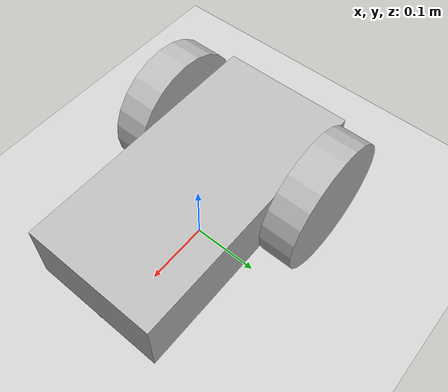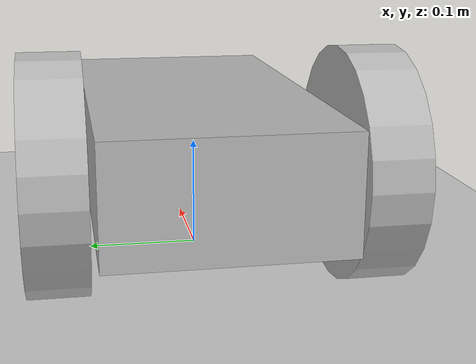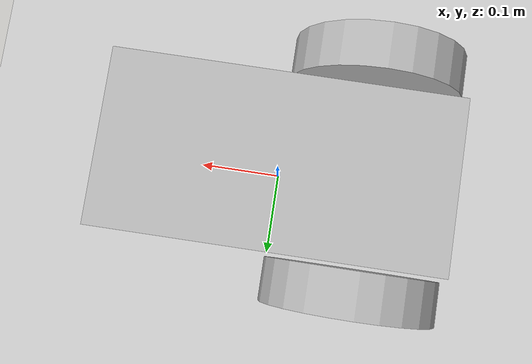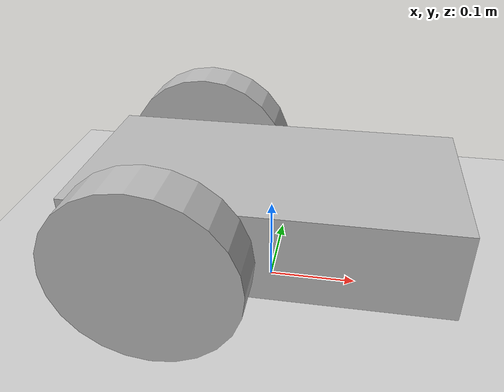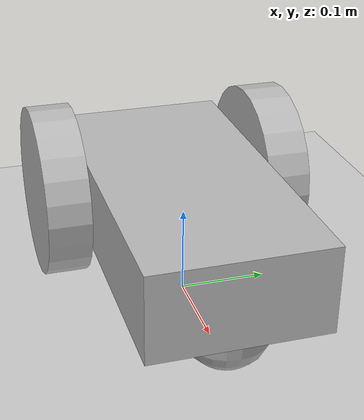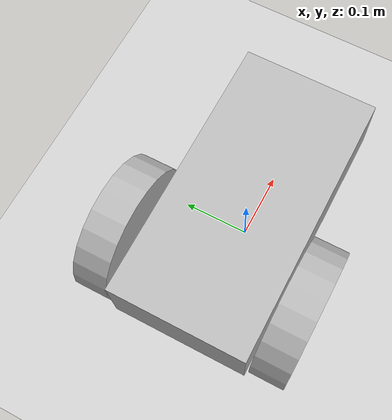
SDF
<?xml version="1.0"?>
<sdf version="1.4">
  <world name="default">

    <!-- Ground Plane -->
    <include>
      <uri>model://ground_plane</uri>
    </include>

    <include>
      <uri>model://rodi</uri>
    </include>

  </world>
</sdf>

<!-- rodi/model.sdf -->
<sdf version='1.4'>
  <model name="rodi">
	<static>false</static>
          <link name='base'>
            <pose>0 0 .1 0 0 0</pose>

            <collision name='collision'>
              <geometry>
                <box>
                  <size>.4 .2 .1</size>
                </box>
              </geometry>
            </collision>

            <visual name='visual'>
              <geometry>
                <box>
                  <size>.4 .2 .1</size>
                </box>
              </geometry>
            </visual>

         <collision name='glass_ball_collision'>
            <pose>0.15 0 -0.05 0 0 0</pose>
            <geometry>
                <sphere>
                <radius>.05</radius>
              </sphere>
            </geometry>

            <surface>
              <friction>
                <ode>
                  <mu>0</mu>
                  <mu2>0</mu2>
                  <slip1>1.0</slip1>
                  <slip2>1.0</slip2>
                </ode>
              </friction>
            </surface>
          </collision>

          <visual name='glass_ball_visual'>
            <pose>0.15 0 -0.05 0 0 0</pose>
            <geometry>
              <sphere>
                <radius>.05</radius>
              </sphere>
            </geometry>
          </visual>

          </link>

	<link name="left_wheel">
        <pose>-0.1 0.13 0.1 0 1.5707 1.5707</pose>
        <collision name="collision">
          <geometry>
            <cylinder>
              <radius>.1</radius>
              <length>.05</length>
            </cylinder>
          </geometry>
        </collision>
        <visual name="visual">
          <geometry>
            <cylinder>
              <radius>.1</radius>
              <length>.05</length>
            </cylinder>
          </geometry>
        </visual>
      </link>

      <link name="right_wheel">
        <pose>-0.1 -0.13 0.1 0 1.5707 1.5707</pose>
        <collision name="collision">
          <geometry>
            <cylinder>
              <radius>.1</radius>
              <length>.05</length>
            </cylinder>
          </geometry>
        </collision>
        <visual name="visual">
          <geometry>
            <cylinder>
              <radius>.1</radius>
              <length>.05</length>
            </cylinder>
          </geometry>
        </visual>
      </link>

     <joint type="revolute" name="left_wheel_servo">
        <pose>0 0 -0.03 0 0 0</pose>
        <child>left_wheel</child>
        <parent>base</parent>
        <axis>
          <xyz>0 1 0</xyz>
        </axis>
      </joint>

      <joint type="revolute" name="right_wheel_servo">
        <pose>0 0 0.03 0 0 0</pose>
        <child>right_wheel</child>
        <parent>base</parent>
        <axis>
          <xyz>0 1 0</xyz>
        </axis>
      </joint>

      <plugin name="model_rodi" filename="libmodel_rodi.so">
		<port>9999</port>
      </plugin>
  </model>
</sdf>
